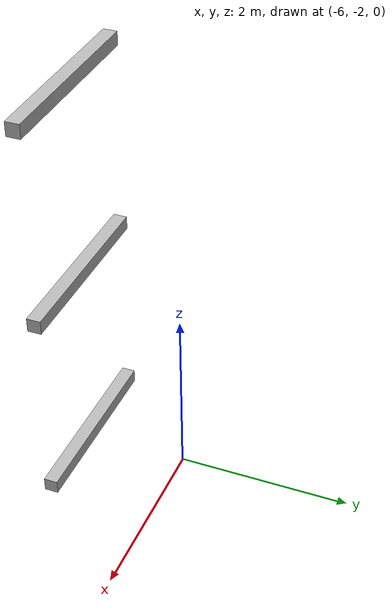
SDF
<sdf version="1.7">
 <world name="default">
  <model name="orthogonal_747_2.000.15_TS">
   <static>1</static>
   <link name="x_link_1_1_0">
    <inertial>
     <mass>1</mass>
     <inertia>
      <ixx>0.166667</ixx>
      <ixy>0</ixy>
      <ixz>0</ixz>
      <iyy>0.166667</iyy>
      <iyz>0</iyz>
      <izz>0.166667</izz>
     </inertia>
    </inertial>
    <pose>1.075 2.15 3.225 0 -0 0</pose>
    <visual name="visual_0">
     <laser_retro>967</laser_retro>
     <geometry><box><size>2 1e-06 0.15</size></box></geometry>
     <material>
      <script><name>Gazebo/Grey</name><uri>file://media/materials/scripts/gazebo.material</uri></script>
      <shader type="pixel"><normal_map>__default__</normal_map></shader>
      <ambient>0.678 0.498 0.659 1</ambient>
      <diffuse>0.7 0.7 0.7 1</diffuse>
      <specular>0.01 0.01 0.01 1</specular>
      <emissive>0 0 0 1</emissive>
     </material>
     <pose>0 -0.075 0 0 -0 0</pose>
     <transparency>1</transparency>
    </visual>
    <visual name="visual_1">
     <laser_retro>968</laser_retro>
     <geometry><box><size>2 1e-06 0.15</size></box></geometry>
     <material>
      <script><name>Gazebo/Grey</name><uri>file://media/materials/scripts/gazebo.material</uri></script>
      <shader type="pixel"><normal_map>__default__</normal_map></shader>
      <ambient>0.447 0.624 0.812 1</ambient>
      <diffuse>0.7 0.7 0.7 1</diffuse>
      <specular>0.01 0.01 0.01 1</specular>
      <emissive>0 0 0 1</emissive>
     </material>
     <pose>0 0.075 0 0 -0 0</pose>
     <transparency>1</transparency>
    </visual>
    <visual name="visual_2">
     <laser_retro>969</laser_retro>
     <geometry><box><size>2 0.15 1e-06</size></box></geometry>
     <material>
      <script><name>Gazebo/Grey</name><uri>file://media/materials/scripts/gazebo.material</uri></script>
      <shader type="pixel"><normal_map>__default__</normal_map></shader>
      <ambient>0.988 0.686 0.243 1</ambient>
      <diffuse>0.7 0.7 0.7 1</diffuse>
      <specular>0.01 0.01 0.01 1</specular>
      <emissive>0 0 0 1</emissive>
     </material>
     <pose>0 0 -0.075 0 -0 0</pose>
     <transparency>1</transparency>
    </visual>
    <visual name="visual_3">
     <laser_retro>970</laser_retro>
     <geometry><box><size>1e-06 0.15 0.15</size></box></geometry>
     <material>
      <script><name>Gazebo/Grey</name><uri>file://media/materials/scripts/gazebo.material</uri></script>
      <shader type="pixel"><normal_map>__default__</normal_map></shader>
      <ambient>0.988 0.914 0.31 1</ambient>
      <diffuse>0.7 0.7 0.7 1</diffuse>
      <specular>0.01 0.01 0.01 1</specular>
      <emissive>0 0 0 1</emissive>
     </material>
     <pose>1 0 0 0 -0 0</pose>
     <transparency>1</transparency>
    </visual>
    <visual name="visual_4">
     <laser_retro>971</laser_retro>
     <geometry><box><size>2 0.15 1e-06</size></box></geometry>
     <material>
      <script><name>Gazebo/Grey</name><uri>file://media/materials/scripts/gazebo.material</uri></script>
      <shader type="pixel"><normal_map>__default__</normal_map></shader>
      <ambient>0.937 0.161 0.161 1</ambient>
      <diffuse>0.7 0.7 0.7 1</diffuse>
      <specular>0.01 0.01 0.01 1</specular>
      <emissive>0 0 0 1</emissive>
     </material>
     <pose>0 0 0.075 0 -0 0</pose>
     <transparency>1</transparency>
    </visual>
    <visual name="visual_5">
     <laser_retro>972</laser_retro>
     <geometry><box><size>1e-06 0.15 0.15</size></box></geometry>
     <material>
      <script><name>Gazebo/Grey</name><uri>file://media/materials/scripts/gazebo.material</uri></script>
      <shader type="pixel"><normal_map>__default__</normal_map></shader>
      <ambient>0.541 0.886 0.204 1</ambient>
      <diffuse>0.7 0.7 0.7 1</diffuse>
      <specular>0.01 0.01 0.01 1</specular>
      <emissive>0 0 0 1</emissive>
     </material>
     <pose>-1 0 0 0 -0 0</pose>
     <transparency>1</transparency>
    </visual>
    <visual name="visual_texture">
     <geometry><box><size>1.9998 0.149985 0.149985</size></box></geometry>
     <material>
      <script>
       <uri>model://BASE_MODELS/simple_block_v2_textured/materials/scripts</uri>
       <uri>model://BASE_MODELS/simple_block_v2_textured/materials/textures</uri>
       <name>metal</name>
      </script>
     </material>
     <laser_retro>973</laser_retro>
    </visual>
    <collision name="collision">
     <geometry><box><size>2 0.15 0.15</size></box></geometry>
     <surface>
      <friction>
       <ode><mu>1</mu><mu2>1</mu2><fdir1>0 0 0</fdir1><slip1>0</slip1><slip2>0</slip2></ode>
       <torsional>
        <coefficient>1</coefficient>
        <patch_radius>0</patch_radius>
        <surface_radius>0</surface_radius>
        <use_patch_radius>1</use_patch_radius>
        <ode><slip>0</slip></ode>
       </torsional>
      </friction>
      <bounce><restitution_coefficient>0</restitution_coefficient><threshold>1e+06</threshold></bounce>
      <contact>
       <collide_without_contact>0</collide_without_contact>
       <collide_without_contact_bitmask>1</collide_without_contact_bitmask>
       <collide_bitmask>1</collide_bitmask>
       <ode>
        <soft_cfm>0</soft_cfm>
        <soft_erp>0.2</soft_erp>
        <kp>1e+13</kp>
        <kd>1</kd>
        <max_vel>0.01</max_vel>
        <min_depth>0</min_depth>
       </ode>
       <bullet>
        <split_impulse>1</split_impulse>
        <split_impulse_penetration_threshold>-0.01</split_impulse_penetration_threshold>
        <soft_cfm>0</soft_cfm>
        <soft_erp>0.2</soft_erp>
        <kp>1e+13</kp>
        <kd>1</kd>
       </bullet>
      </contact>
     </surface>
    </collision>
   </link>
   <link name="x_link_2_1_0">
    <inertial>
     <mass>1</mass>
     <inertia>
      <ixx>0.166667</ixx>
      <ixy>0</ixy>
      <ixz>0</ixz>
      <iyy>0.166667</iyy>
      <iyz>0</iyz>
      <izz>0.166667</izz>
     </inertia>
    </inertial>
    <pose>1.075 2.15 5.375 0 -0 0</pose>
    <visual name="visual_0">
     <laser_retro>1870</laser_retro>
     <geometry><box><size>2 1e-06 0.15</size></box></geometry>
     <material>
      <script><name>Gazebo/Grey</name><uri>file://media/materials/scripts/gazebo.material</uri></script>
      <shader type="pixel"><normal_map>__default__</normal_map></shader>
      <ambient>0.678 0.498 0.659 1</ambient>
      <diffuse>0.7 0.7 0.7 1</diffuse>
      <specular>0.01 0.01 0.01 1</specular>
      <emissive>0 0 0 1</emissive>
     </material>
     <pose>0 -0.075 0 0 -0 0</pose>
     <transparency>1</transparency>
    </visual>
    <visual name="visual_1">
     <laser_retro>1871</laser_retro>
     <geometry><box><size>2 1e-06 0.15</size></box></geometry>
     <material>
      <script><name>Gazebo/Grey</name><uri>file://media/materials/scripts/gazebo.material</uri></script>
      <shader type="pixel"><normal_map>__default__</normal_map></shader>
      <ambient>0.447 0.624 0.812 1</ambient>
      <diffuse>0.7 0.7 0.7 1</diffuse>
      <specular>0.01 0.01 0.01 1</specular>
      <emissive>0 0 0 1</emissive>
     </material>
     <pose>0 0.075 0 0 -0 0</pose>
     <transparency>1</transparency>
    </visual>
    <visual name="visual_2">
     <laser_retro>1872</laser_retro>
     <geometry><box><size>2 0.15 1e-06</size></box></geometry>
     <material>
      <script><name>Gazebo/Grey</name><uri>file://media/materials/scripts/gazebo.material</uri></script>
      <shader type="pixel"><normal_map>__default__</normal_map></shader>
      <ambient>0.988 0.686 0.243 1</ambient>
      <diffuse>0.7 0.7 0.7 1</diffuse>
      <specular>0.01 0.01 0.01 1</specular>
      <emissive>0 0 0 1</emissive>
     </material>
     <pose>0 0 -0.075 0 -0 0</pose>
     <transparency>1</transparency>
    </visual>
    <visual name="visual_3">
     <laser_retro>1873</laser_retro>
     <geometry><box><size>1e-06 0.15 0.15</size></box></geometry>
     <material>
      <script><name>Gazebo/Grey</name><uri>file://media/materials/scripts/gazebo.material</uri></script>
      <shader type="pixel"><normal_map>__default__</normal_map></shader>
      <ambient>0.988 0.914 0.31 1</ambient>
      <diffuse>0.7 0.7 0.7 1</diffuse>
      <specular>0.01 0.01 0.01 1</specular>
      <emissive>0 0 0 1</emissive>
     </material>
     <pose>1 0 0 0 -0 0</pose>
     <transparency>1</transparency>
    </visual>
    <visual name="visual_4">
     <laser_retro>1874</laser_retro>
     <geometry><box><size>2 0.15 1e-06</size></box></geometry>
     <material>
      <script><name>Gazebo/Grey</name><uri>file://media/materials/scripts/gazebo.material</uri></script>
      <shader type="pixel"><normal_map>__default__</normal_map></shader>
      <ambient>0.937 0.161 0.161 1</ambient>
      <diffuse>0.7 0.7 0.7 1</diffuse>
      <specular>0.01 0.01 0.01 1</specular>
      <emissive>0 0 0 1</emissive>
     </material>
     <pose>0 0 0.075 0 -0 0</pose>
     <transparency>1</transparency>
    </visual>
    <visual name="visual_5">
     <laser_retro>1875</laser_retro>
     <geometry><box><size>1e-06 0.15 0.15</size></box></geometry>
     <material>
      <script><name>Gazebo/Grey</name><uri>file://media/materials/scripts/gazebo.material</uri></script>
      <shader type="pixel"><normal_map>__default__</normal_map></shader>
      <ambient>0.541 0.886 0.204 1</ambient>
      <diffuse>0.7 0.7 0.7 1</diffuse>
      <specular>0.01 0.01 0.01 1</specular>
      <emissive>0 0 0 1</emissive>
     </material>
     <pose>-1 0 0 0 -0 0</pose>
     <transparency>1</transparency>
    </visual>
    <visual name="visual_texture">
     <geometry><box><size>1.9998 0.149985 0.149985</size></box></geometry>
     <material>
      <script>
       <uri>model://BASE_MODELS/simple_block_v2_textured/materials/scripts</uri>
       <uri>model://BASE_MODELS/simple_block_v2_textured/materials/textures</uri>
       <name>metal</name>
      </script>
     </material>
     <laser_retro>1876</laser_retro>
    </visual>
    <collision name="collision">
     <geometry><box><size>2 0.15 0.15</size></box></geometry>
     <surface>
      <friction>
       <ode><mu>1</mu><mu2>1</mu2><fdir1>0 0 0</fdir1><slip1>0</slip1><slip2>0</slip2></ode>
       <torsional>
        <coefficient>1</coefficient>
        <patch_radius>0</patch_radius>
        <surface_radius>0</surface_radius>
        <use_patch_radius>1</use_patch_radius>
        <ode><slip>0</slip></ode>
       </torsional>
      </friction>
      <bounce><restitution_coefficient>0</restitution_coefficient><threshold>1e+06</threshold></bounce>
      <contact>
       <collide_without_contact>0</collide_without_contact>
       <collide_without_contact_bitmask>1</collide_without_contact_bitmask>
       <collide_bitmask>1</collide_bitmask>
       <ode>
        <soft_cfm>0</soft_cfm>
        <soft_erp>0.2</soft_erp>
        <kp>1e+13</kp>
        <kd>1</kd>
        <max_vel>0.01</max_vel>
        <min_depth>0</min_depth>
       </ode>
       <bullet>
        <split_impulse>1</split_impulse>
        <split_impulse_penetration_threshold>-0.01</split_impulse_penetration_threshold>
        <soft_cfm>0</soft_cfm>
        <soft_erp>0.2</soft_erp>
        <kp>1e+13</kp>
        <kd>1</kd>
       </bullet>
      </contact>
     </surface>
    </collision>
   </link>
   <link name="x_link_3_1_0">
    <inertial>
     <mass>1</mass>
     <inertia>
      <ixx>0.166667</ixx>
      <ixy>0</ixy>
      <ixz>0</ixz>
      <iyy>0.166667</iyy>
      <iyz>0</iyz>
      <izz>0.166667</izz>
     </inertia>
    </inertial>
    <pose>1.075 2.15 7.525 0 -0 0</pose>
    <visual name="visual_0">
     <laser_retro>2773</laser_retro>
     <geometry><box><size>2 1e-06 0.15</size></box></geometry>
     <material>
      <script><name>Gazebo/Grey</name><uri>file://media/materials/scripts/gazebo.material</uri></script>
      <shader type="pixel"><normal_map>__default__</normal_map></shader>
      <ambient>0.678 0.498 0.659 1</ambient>
      <diffuse>0.7 0.7 0.7 1</diffuse>
      <specular>0.01 0.01 0.01 1</specular>
      <emissive>0 0 0 1</emissive>
     </material>
     <pose>0 -0.075 0 0 -0 0</pose>
     <transparency>1</transparency>
    </visual>
    <visual name="visual_1">
     <laser_retro>2774</laser_retro>
     <geometry><box><size>2 1e-06 0.15</size></box></geometry>
     <material>
      <script><name>Gazebo/Grey</name><uri>file://media/materials/scripts/gazebo.material</uri></script>
      <shader type="pixel"><normal_map>__default__</normal_map></shader>
      <ambient>0.447 0.624 0.812 1</ambient>
      <diffuse>0.7 0.7 0.7 1</diffuse>
      <specular>0.01 0.01 0.01 1</specular>
      <emissive>0 0 0 1</emissive>
     </material>
     <pose>0 0.075 0 0 -0 0</pose>
     <transparency>1</transparency>
    </visual>
    <visual name="visual_2">
     <laser_retro>2775</laser_retro>
     <geometry><box><size>2 0.15 1e-06</size></box></geometry>
     <material>
      <script><name>Gazebo/Grey</name><uri>file://media/materials/scripts/gazebo.material</uri></script>
      <shader type="pixel"><normal_map>__default__</normal_map></shader>
      <ambient>0.988 0.686 0.243 1</ambient>
      <diffuse>0.7 0.7 0.7 1</diffuse>
      <specular>0.01 0.01 0.01 1</specular>
      <emissive>0 0 0 1</emissive>
     </material>
     <pose>0 0 -0.075 0 -0 0</pose>
     <transparency>1</transparency>
    </visual>
    <visual name="visual_3">
     <laser_retro>2776</laser_retro>
     <geometry><box><size>1e-06 0.15 0.15</size></box></geometry>
     <material>
      <script><name>Gazebo/Grey</name><uri>file://media/materials/scripts/gazebo.material</uri></script>
      <shader type="pixel"><normal_map>__default__</normal_map></shader>
      <ambient>0.988 0.914 0.31 1</ambient>
      <diffuse>0.7 0.7 0.7 1</diffuse>
      <specular>0.01 0.01 0.01 1</specular>
      <emissive>0 0 0 1</emissive>
     </material>
     <pose>1 0 0 0 -0 0</pose>
     <transparency>1</transparency>
    </visual>
    <visual name="visual_4">
     <laser_retro>2777</laser_retro>
     <geometry><box><size>2 0.15 1e-06</size></box></geometry>
     <material>
      <script><name>Gazebo/Grey</name><uri>file://media/materials/scripts/gazebo.material</uri></script>
      <shader type="pixel"><normal_map>__default__</normal_map></shader>
      <ambient>0.937 0.161 0.161 1</ambient>
      <diffuse>0.7 0.7 0.7 1</diffuse>
      <specular>0.01 0.01 0.01 1</specular>
      <emissive>0 0 0 1</emissive>
     </material>
     <pose>0 0 0.075 0 -0 0</pose>
     <transparency>1</transparency>
    </visual>
    <visual name="visual_5">
     <laser_retro>2778</laser_retro>
     <geometry><box><size>1e-06 0.15 0.15</size></box></geometry>
     <material>
      <script><name>Gazebo/Grey</name><uri>file://media/materials/scripts/gazebo.material</uri></script>
      <shader type="pixel"><normal_map>__default__</normal_map></shader>
      <ambient>0.541 0.886 0.204 1</ambient>
      <diffuse>0.7 0.7 0.7 1</diffuse>
      <specular>0.01 0.01 0.01 1</specular>
      <emissive>0 0 0 1</emissive>
     </material>
     <pose>-1 0 0 0 -0 0</pose>
     <transparency>1</transparency>
    </visual>
    <visual name="visual_texture">
     <geometry><box><size>1.9998 0.149985 0.149985</size></box></geometry>
     <material>
      <script>
       <uri>model://BASE_MODELS/simple_block_v2_textured/materials/scripts</uri>
       <uri>model://BASE_MODELS/simple_block_v2_textured/materials/textures</uri>
       <name>metal</name>
      </script>
     </material>
     <laser_retro>2779</laser_retro>
    </visual>
    <collision name="collision">
     <geometry><box><size>2 0.15 0.15</size></box></geometry>
     <surface>
      <friction>
       <ode><mu>1</mu><mu2>1</mu2><fdir1>0 0 0</fdir1><slip1>0</slip1><slip2>0</slip2></ode>
       <torsional>
        <coefficient>1</coefficient>
        <patch_radius>0</patch_radius>
        <surface_radius>0</surface_radius>
        <use_patch_radius>1</use_patch_radius>
        <ode><slip>0</slip></ode>
       </torsional>
      </friction>
      <bounce><restitution_coefficient>0</restitution_coefficient><threshold>1e+06</threshold></bounce>
      <contact>
       <collide_without_contact>0</collide_without_contact>
       <collide_without_contact_bitmask>1</collide_without_contact_bitmask>
       <collide_bitmask>1</collide_bitmask>
       <ode>
        <soft_cfm>0</soft_cfm>
        <soft_erp>0.2</soft_erp>
        <kp>1e+13</kp>
        <kd>1</kd>
        <max_vel>0.01</max_vel>
        <min_depth>0</min_depth>
       </ode>
       <bullet>
        <split_impulse>1</split_impulse>
        <split_impulse_penetration_threshold>-0.01</split_impulse_penetration_threshold>
        <soft_cfm>0</soft_cfm>
        <soft_erp>0.2</soft_erp>
        <kp>1e+13</kp>
        <kd>1</kd>
       </bullet>
      </contact>
     </surface>
    </collision>
   </link>
   <pose>-6.47624 -5 -2.5 0 -0 0</pose>
  </model>
 </world>
</sdf>
